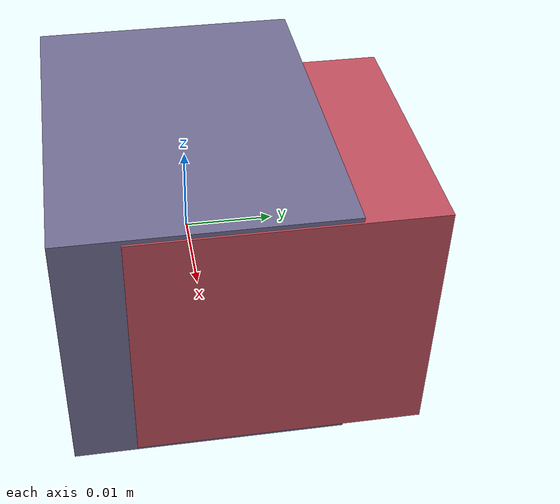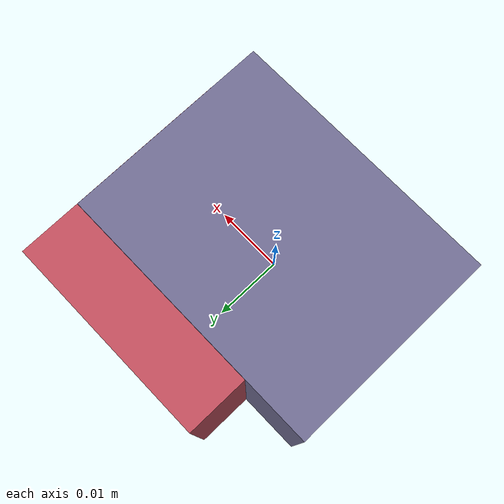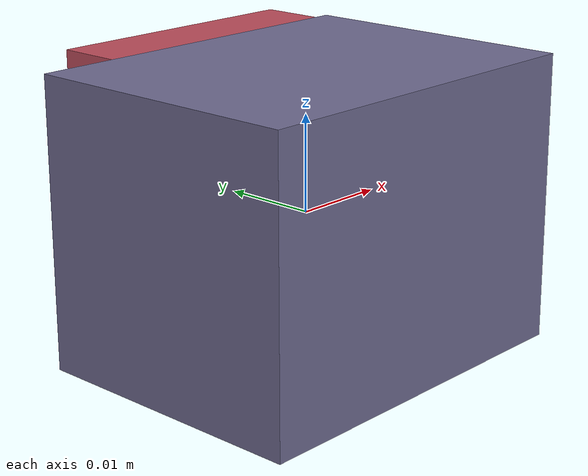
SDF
<sdf version="1.4"><world name="default"><model name="object0"><link name="link1"><pose>0 0 0 0 0 0</pose><inertial><pose>0 0 0 0 0 0</pose><mass>0.021379677681003517</mass><inertia><ixx>3.2069516521505274e-06</ixx><ixy>0</ixy><iyy>4.396242766624233e-06</iyy><ixz>0</ixz><iyz>0</iyz><izz>4.396242766624233e-06</izz></inertia></inertial><visual name="link1_visual"><pose>0 0  0 0 0 0</pose><geometry><box><size>0.03959199570556207 0.03 0.03</size></box></geometry><material><diffuse>0.43247898982882266 0.4167705202876359 0.5640303069459636 1</diffuse></material></visual><collision><pose>0 0  0 0 0 0</pose><geometry><box><size>0.03959199570556207 0.03 0.03</size></box></geometry></collision></link><link name="link2"><pose>0.005013561822528521 0.007846822366453444 0 0 0 0</pose><inertial><pose>0 0 0 0 0 0</pose><mass>0.017226710205328438</mass><inertia><ixx>2.668265114017055e-06</ixx><ixy>0</ixy><iyy>2.4993085389564008e-06</iyy><ixz>0</ixz><iyz>0</iyz><izz>2.7529631058599197e-06</izz></inertia></inertial><visual name="link2_visual"><pose>0 0  0 0 0 0</pose><geometry><box><size>0.03 0.03190131519505266 0.028999999999999998</size></box></geometry><material><diffuse>0.7425148504394732 0.30118459851911306 0.3583544569529968 1</diffuse></material></visual><collision><pose>0 0  0 0 0 0</pose><geometry><box><size>0.03 0.03190131519505266 0.028999999999999998</size></box></geometry></collision></link><joint name="link_joint_0" type="fixed"><parent>link1</parent><child>link2</child><pose>0 0 0 0 0 0</pose><axis><xyz>0 0 1</xyz></axis></joint></model></world></sdf>
